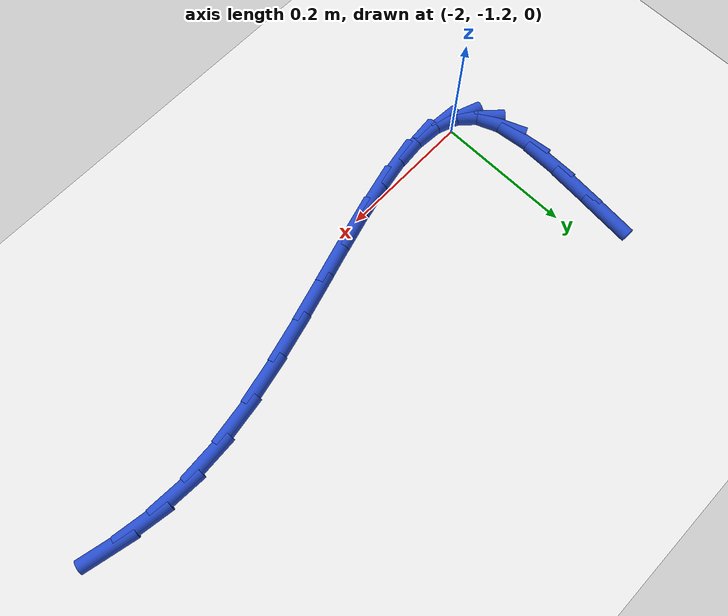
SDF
<sdf version="1.6">
 <world name="default">
  <model name="ground_plane">
   <static>1</static>
   <link name="link">
    <collision name="collision">
     <geometry><plane><normal>0 0 1</normal><size>100 100</size></plane></geometry>
     <surface><friction><ode><mu>100</mu><mu2>50</mu2></ode></friction></surface>
    </collision>
    <visual name="visual">
     <cast_shadows>0</cast_shadows>
     <geometry><plane><normal>0 0 1</normal><size>100 100</size></plane></geometry>
     <material>
      <script><uri>file://media/materials/scripts/gazebo.material</uri><name>Gazebo/WhiteGlow</name></script>
     </material>
    </visual>
   </link>
  </model>
  <model name="line">
   <link name="link_112">
    <pose>-2.0464503948740824 -0.95010176470935 0.01 0 1.57 1.4868323966514396</pose>
    <collision name="collision">
     <geometry><cylinder><radius>0.01</radius><length>0.08</length></cylinder></geometry>
    </collision>
    <visual name="visual">
     <material>
      <script><name>Gazebo/Blue</name><uri>file://media/materials/scripts/gazebo.material</uri></script>
     </material>
     <geometry><cylinder><radius>0.01</radius><length>0.08</length></cylinder></geometry>
    </visual>
   </link>
   <link name="link_113">
    <pose>-2.0512842562853772 -1.0075371012925174 0.01 0 1.57 1.4980450501066618</pose>
    <collision name="collision">
     <geometry><cylinder><radius>0.01</radius><length>0.08</length></cylinder></geometry>
    </collision>
    <visual name="visual">
     <material>
      <script><name>Gazebo/Blue</name><uri>file://media/materials/scripts/gazebo.material</uri></script>
     </material>
     <geometry><cylinder><radius>0.01</radius><length>0.08</length></cylinder></geometry>
    </visual>
   </link>
   <link name="link_114">
    <pose>-2.055253240999387 -1.0619963512656767 0.01 0 1.57 1.5563653026105748</pose>
    <collision name="collision">
     <geometry><cylinder><radius>0.01</radius><length>0.08</length></cylinder></geometry>
    </collision>
    <visual name="visual">
     <material>
      <script><name>Gazebo/Blue</name><uri>file://media/materials/scripts/gazebo.material</uri></script>
     </material>
     <geometry><cylinder><radius>0.01</radius><length>0.08</length></cylinder></geometry>
    </visual>
   </link>
   <link name="link_115">
    <pose>-2.055963980899689 -1.1112437610328674 0.01 0 1.57 -1.453139044731681</pose>
    <collision name="collision">
     <geometry><cylinder><radius>0.01</radius><length>0.08</length></cylinder></geometry>
    </collision>
    <visual name="visual">
     <material>
      <script><name>Gazebo/Blue</name><uri>file://media/materials/scripts/gazebo.material</uri></script>
     </material>
     <geometry><cylinder><radius>0.01</radius><length>0.08</length></cylinder></geometry>
    </visual>
   </link>
   <link name="link_116">
    <pose>-2.051023107869856 -1.1530435769981264 0.01 0 1.57 -1.186742543422232</pose>
    <collision name="collision">
     <geometry><cylinder><radius>0.01</radius><length>0.08</length></cylinder></geometry>
    </collision>
    <visual name="visual">
     <material>
      <script><name>Gazebo/Blue</name><uri>file://media/materials/scripts/gazebo.material</uri></script>
     </material>
     <geometry><cylinder><radius>0.01</radius><length>0.08</length></cylinder></geometry>
    </visual>
   </link>
   <link name="link_117">
    <pose>-2.0380421078222333 -1.1851651561210563 0.01 0 1.57 -0.7584668657487214</pose>
    <collision name="collision">
     <geometry><cylinder><radius>0.01</radius><length>0.08</length></cylinder></geometry>
    </collision>
    <visual name="visual">
     <material>
      <script><name>Gazebo/Blue</name><uri>file://media/materials/scripts/gazebo.material</uri></script>
     </material>
     <geometry><cylinder><radius>0.01</radius><length>0.08</length></cylinder></geometry>
    </visual>
   </link>
   <link name="link_118">
    <pose>-2.0156166847909054 -1.2064140876616534 0.01 0 1.57 -0.35336531697966256</pose>
    <collision name="collision">
     <geometry><cylinder><radius>0.01</radius><length>0.08</length></cylinder></geometry>
    </collision>
    <visual name="visual">
     <material>
      <script><name>Gazebo/Blue</name><uri>file://media/materials/scripts/gazebo.material</uri></script>
     </material>
     <geometry><cylinder><radius>0.01</radius><length>0.08</length></cylinder></geometry>
    </visual>
   </link>
   <link name="link_119">
    <pose>-1.9845168429288982 -1.2178851688961303 0.01 0 1.57 -0.0797582500715391</pose>
    <collision name="collision">
     <geometry><cylinder><radius>0.01</radius><length>0.08</length></cylinder></geometry>
    </collision>
    <visual name="visual">
     <material>
      <script><name>Gazebo/Blue</name><uri>file://media/materials/scripts/gazebo.material</uri></script>
     </material>
     <geometry><cylinder><radius>0.01</radius><length>0.08</length></cylinder></geometry>
    </visual>
   </link>
   <link name="link_120">
    <pose>-1.9458034615701698 -1.2209794445180209 0.01 0 1.57 0.08553904200156892</pose>
    <collision name="collision">
     <geometry><cylinder><radius>0.01</radius><length>0.08</length></cylinder></geometry>
    </collision>
    <visual name="visual">
     <material>
      <script><name>Gazebo/Blue</name><uri>file://media/materials/scripts/gazebo.material</uri></script>
     </material>
     <geometry><cylinder><radius>0.01</radius><length>0.08</length></cylinder></geometry>
    </visual>
   </link>
   <link name="link_121">
    <pose>-1.9005374200486778 -1.217097959220861 0.01 0 1.57 0.18418881914237795</pose>
    <collision name="collision">
     <geometry><cylinder><radius>0.01</radius><length>0.08</length></cylinder></geometry>
    </collision>
    <visual name="visual">
     <material>
      <script><name>Gazebo/Blue</name><uri>file://media/materials/scripts/gazebo.material</uri></script>
     </material>
     <geometry><cylinder><radius>0.01</radius><length>0.08</length></cylinder></geometry>
    </visual>
   </link>
   <link name="link_122">
    <pose>-1.8497795976983824 -1.2076417576981857 0.01 0 1.57 0.24212340161673349</pose>
    <collision name="collision">
     <geometry><cylinder><radius>0.01</radius><length>0.08</length></cylinder></geometry>
    </collision>
    <visual name="visual">
     <material>
      <script><name>Gazebo/Blue</name><uri>file://media/materials/scripts/gazebo.material</uri></script>
     </material>
     <geometry><cylinder><radius>0.01</radius><length>0.08</length></cylinder></geometry>
    </visual>
   </link>
   <link name="link_123">
    <pose>-1.7945908738532406 -1.1940118846435293 0.01 0 1.57 0.2731045205506161</pose>
    <collision name="collision">
     <geometry><cylinder><radius>0.01</radius><length>0.08</length></cylinder></geometry>
    </collision>
    <visual name="visual">
     <material>
      <script><name>Gazebo/Blue</name><uri>file://media/materials/scripts/gazebo.material</uri></script>
     </material>
     <geometry><cylinder><radius>0.01</radius><length>0.08</length></cylinder></geometry>
    </visual>
   </link>
   <link name="link_124">
    <pose>-1.7360321278472115 -1.1776093847504272 0.01 0 1.57 0.2841112501821457</pose>
    <collision name="collision">
     <geometry><cylinder><radius>0.01</radius><length>0.08</length></cylinder></geometry>
    </collision>
    <visual name="visual">
     <material>
      <script><name>Gazebo/Blue</name><uri>file://media/materials/scripts/gazebo.material</uri></script>
     </material>
     <geometry><cylinder><radius>0.01</radius><length>0.08</length></cylinder></geometry>
    </visual>
   </link>
   <link name="link_125">
    <pose>-1.6751642390142525 -1.1598353027124146 0.01 0 1.57 0.2782572007268826</pose>
    <collision name="collision">
     <geometry><cylinder><radius>0.01</radius><length>0.08</length></cylinder></geometry>
    </collision>
    <visual name="visual">
     <material>
      <script><name>Gazebo/Blue</name><uri>file://media/materials/scripts/gazebo.material</uri></script>
     </material>
     <geometry><cylinder><radius>0.01</radius><length>0.08</length></cylinder></geometry>
    </visual>
   </link>
   <link name="link_126">
    <pose>-1.6130480866883212 -1.1420906832230258 0.01 0 1.57 0.2560991020586069</pose>
    <collision name="collision">
     <geometry><cylinder><radius>0.01</radius><length>0.08</length></cylinder></geometry>
    </collision>
    <visual name="visual">
     <material>
      <script><name>Gazebo/Blue</name><uri>file://media/materials/scripts/gazebo.material</uri></script>
     </material>
     <geometry><cylinder><radius>0.01</radius><length>0.08</length></cylinder></geometry>
    </visual>
   </link>
   <link name="link_127">
    <pose>-1.5507445502033785 -1.1257765709757965 0.01 0 1.57 0.2160526238747273</pose>
    <collision name="collision">
     <geometry><cylinder><radius>0.01</radius><length>0.08</length></cylinder></geometry>
    </collision>
    <visual name="visual">
     <material>
      <script><name>Gazebo/Blue</name><uri>file://media/materials/scripts/gazebo.material</uri></script>
     </material>
     <geometry><cylinder><radius>0.01</radius><length>0.08</length></cylinder></geometry>
    </visual>
   </link>
   <link name="link_128">
    <pose>-1.4893145088933815 -1.1122940106642614 0.01 0 1.57 0.1542380693307215</pose>
    <collision name="collision">
     <geometry><cylinder><radius>0.01</radius><length>0.08</length></cylinder></geometry>
    </collision>
    <visual name="visual">
     <material>
      <script><name>Gazebo/Blue</name><uri>file://media/materials/scripts/gazebo.material</uri></script>
     </material>
     <geometry><cylinder><radius>0.01</radius><length>0.08</length></cylinder></geometry>
    </visual>
   </link>
   <link name="link_129">
    <pose>-1.429818842092288 -1.1030440469819556 0.01 0 1.57 0.06391805941439692</pose>
    <collision name="collision">
     <geometry><cylinder><radius>0.01</radius><length>0.08</length></cylinder></geometry>
    </collision>
    <visual name="visual">
     <material>
      <script><name>Gazebo/Blue</name><uri>file://media/materials/scripts/gazebo.material</uri></script>
     </material>
     <geometry><cylinder><radius>0.01</radius><length>0.08</length></cylinder></geometry>
    </visual>
   </link>
   <link name="link_130">
    <pose>-1.3733184286811617 -1.0994277240074581 0.01 0 1.57 -0.053916179659262875</pose>
    <collision name="collision">
     <geometry><cylinder><radius>0.01</radius><length>0.08</length></cylinder></geometry>
    </collision>
    <visual name="visual">
     <material>
      <script><name>Gazebo/Blue</name><uri>file://media/materials/scripts/gazebo.material</uri></script>
     </material>
     <geometry><cylinder><radius>0.01</radius><length>0.08</length></cylinder></geometry>
    </visual>
   </link>
   <link name="link_131">
    <pose>-1.320457641704239 -1.102280540566815 0.01 0 1.57 -0.15737323557628172</pose>
    <collision name="collision">
     <geometry><cylinder><radius>0.01</radius><length>0.08</length></cylinder></geometry>
    </collision>
    <visual name="visual">
     <material>
      <script><name>Gazebo/Blue</name><uri>file://media/materials/scripts/gazebo.material</uri></script>
     </material>
     <geometry><cylinder><radius>0.01</radius><length>0.08</length></cylinder></geometry>
    </visual>
   </link>
   <link name="link_132">
    <pose>-1.270265953065603 -1.1102452298814238 0.01 0 1.57 -0.2249899148965894</pose>
    <collision name="collision">
     <geometry><cylinder><radius>0.01</radius><length>0.08</length></cylinder></geometry>
    </collision>
    <visual name="visual">
     <material>
      <script><name>Gazebo/Blue</name><uri>file://media/materials/scripts/gazebo.material</uri></script>
     </material>
     <geometry><cylinder><radius>0.01</radius><length>0.08</length></cylinder></geometry>
    </visual>
   </link>
  </model>
 </world>
</sdf>
